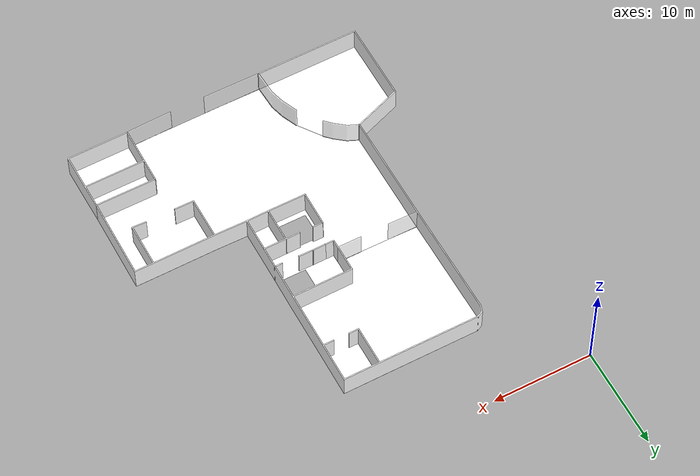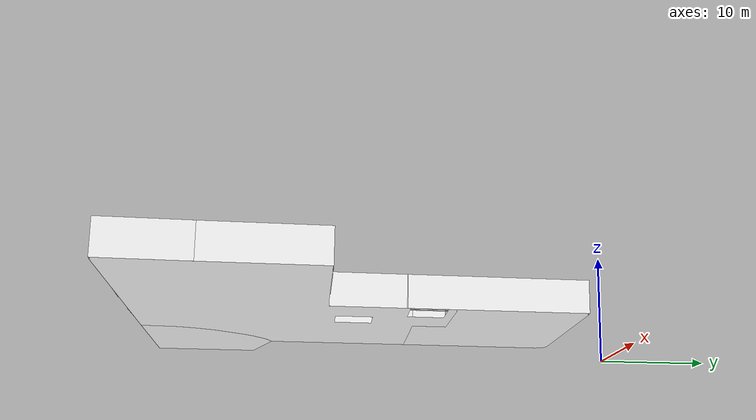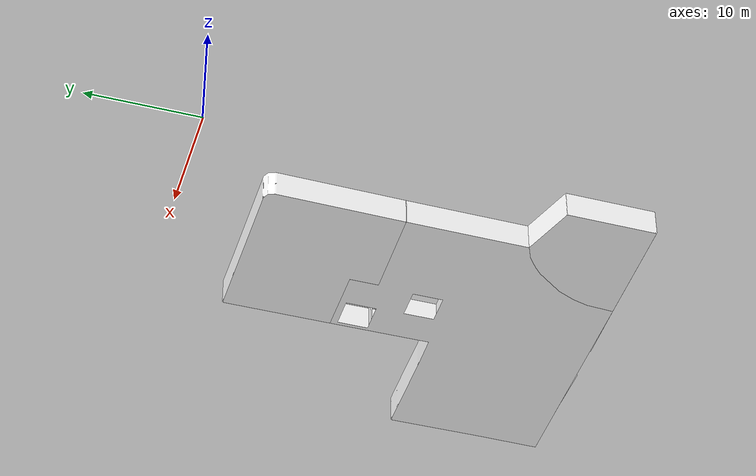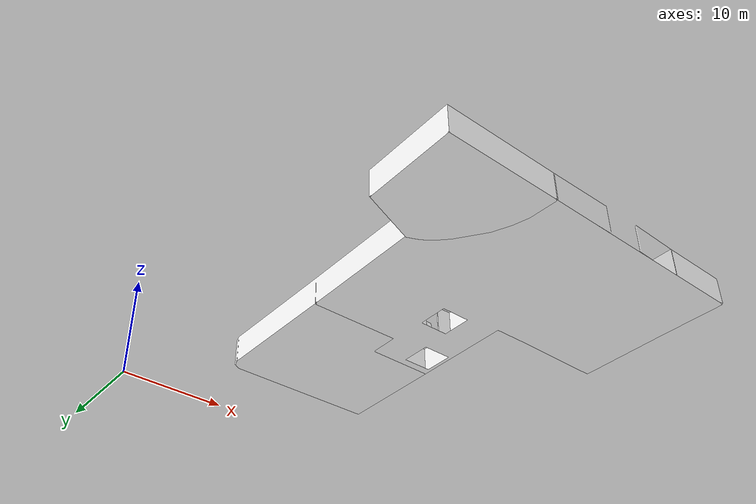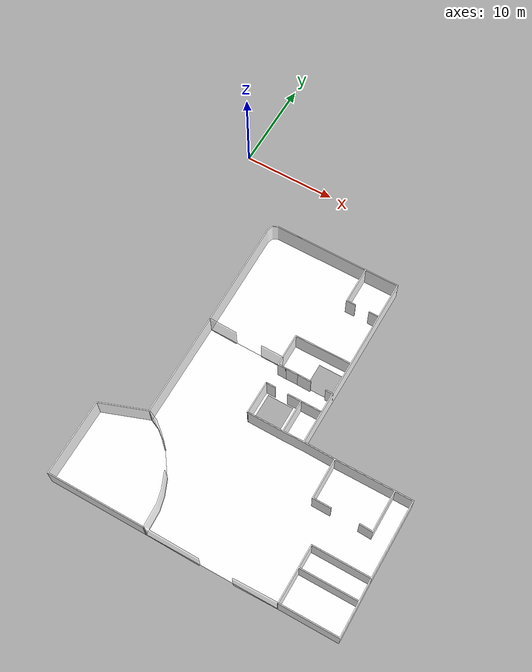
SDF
<?xml version='1.0' encoding='utf-8'?>
<sdf version="1.7">
  <model name="hotel_L1_before">
    <static>true</static>
    <link name="floor_1">
      <visual name="visual">
        <geometry>
          <mesh>
            <uri>model://hotel_L1_before/meshes/floor_1.obj</uri>
          </mesh>
        </geometry>
        <material>
          <diffuse>1.0 1.0 1.0</diffuse>
          <specular>0.1 0.1 0.1</specular>
          <pbr>
            <metal>
              <metalness>0.0</metalness>
              <albedo_map>model://hotel_L1_before/meshes/concrete2.png</albedo_map>
            </metal>
          </pbr>
          <script>
            <uri>model://hotel_L1_before/meshes/</uri>
            <name>floor_1_Diffuse</name>
          </script>
        </material>
      </visual>
      <collision name="collision">
        <geometry>
          <mesh>
            <uri>model://hotel_L1_before/meshes/floor_1.obj</uri>
          </mesh>
        </geometry>
        <surface>
          <contact>
            <collide_bitmask>0x01</collide_bitmask>
          </contact>
        </surface>
      </collision>
    </link>
    <link name="floor_2">
      <visual name="visual">
        <geometry>
          <mesh>
            <uri>model://hotel_L1_before/meshes/floor_2.obj</uri>
          </mesh>
        </geometry>
        <material>
          <diffuse>1.0 1.0 1.0</diffuse>
          <specular>0.1 0.1 0.1</specular>
          <pbr>
            <metal>
              <metalness>0.0</metalness>
              <albedo_map>model://hotel_L1_before/meshes/red_tiles.png</albedo_map>
            </metal>
          </pbr>
          <script>
            <uri>model://hotel_L1_before/meshes/</uri>
            <name>floor_2_Diffuse</name>
          </script>
        </material>
      </visual>
      <collision name="collision">
        <geometry>
          <mesh>
            <uri>model://hotel_L1_before/meshes/floor_2.obj</uri>
          </mesh>
        </geometry>
        <surface>
          <contact>
            <collide_bitmask>0x01</collide_bitmask>
          </contact>
        </surface>
      </collision>
    </link>
    <link name="floor_3">
      <visual name="visual">
        <geometry>
          <mesh>
            <uri>model://hotel_L1_before/meshes/floor_3.obj</uri>
          </mesh>
        </geometry>
        <material>
          <diffuse>1.0 1.0 1.0</diffuse>
          <specular>0.1 0.1 0.1</specular>
          <pbr>
            <metal>
              <metalness>0.0</metalness>
              <albedo_map>model://hotel_L1_before/meshes/white_beige_tiles.png</albedo_map>
            </metal>
          </pbr>
          <script>
            <uri>model://hotel_L1_before/meshes/</uri>
            <name>floor_3_Diffuse</name>
          </script>
        </material>
      </visual>
      <collision name="collision">
        <geometry>
          <mesh>
            <uri>model://hotel_L1_before/meshes/floor_3.obj</uri>
          </mesh>
        </geometry>
        <surface>
          <contact>
            <collide_bitmask>0x01</collide_bitmask>
          </contact>
        </surface>
      </collision>
    </link>
    <link name="wall_1">
      <visual name="wall_1">
        <geometry>
          <mesh>
            <uri>model://hotel_L1_before/meshes/wall_1.obj</uri>
          </mesh>
        </geometry>
        <transparency>0.0</transparency>
        <material>
          <diffuse>1.0 1.0 1.0</diffuse>
          <specular>0.1 0.1 0.1</specular>
          <pbr>
            <metal>
              <metalness>0.0</metalness>
              <albedo_map>model://hotel_L1_before/meshes/white_brick.png</albedo_map>
            </metal>
          </pbr>
          <script>
            <uri>model://hotel_L1_before/meshes/</uri>
            <name>wall_1_Diffuse</name>
          </script>
        </material>
      </visual>
      <collision name="collision">
        <geometry>
          <mesh>
            <uri>model://hotel_L1_before/meshes/wall_1.obj</uri>
          </mesh>
        </geometry>
        <surface>
          <contact>
            <collide_bitmask>0x01</collide_bitmask>
          </contact>
        </surface>
      </collision>
      <pose>2.2522282575069843 -40.52464950099821 0 0 0 0</pose>
    </link>
    <link name="wall_2">
      <visual name="wall_2">
        <geometry>
          <mesh>
            <uri>model://hotel_L1_before/meshes/wall_2.obj</uri>
          </mesh>
        </geometry>
        <transparency>0.4</transparency>
        <material>
          <diffuse>1.0 1.0 1.0</diffuse>
          <specular>0.1 0.1 0.1</specular>
          <pbr>
            <metal>
              <metalness>0.0</metalness>
              <albedo_map>model://hotel_L1_before/meshes/white_brick.png</albedo_map>
            </metal>
          </pbr>
          <script>
            <uri>model://hotel_L1_before/meshes/</uri>
            <name>wall_2_Diffuse</name>
          </script>
        </material>
      </visual>
      <collision name="collision">
        <geometry>
          <mesh>
            <uri>model://hotel_L1_before/meshes/wall_2.obj</uri>
          </mesh>
        </geometry>
        <surface>
          <contact>
            <collide_bitmask>0x01</collide_bitmask>
          </contact>
        </surface>
      </collision>
      <pose>7.025808698579259 -19.658756477546383 0 0 0 0</pose>
    </link>
    <link name="wall_3">
      <visual name="wall_3">
        <geometry>
          <mesh>
            <uri>model://hotel_L1_before/meshes/wall_3.obj</uri>
          </mesh>
        </geometry>
        <transparency>0.0</transparency>
        <material>
          <diffuse>1.0 1.0 1.0</diffuse>
          <specular>0.1 0.1 0.1</specular>
          <pbr>
            <metal>
              <metalness>0.0</metalness>
              <albedo_map>model://hotel_L1_before/meshes/white_beige_tiles.png</albedo_map>
            </metal>
          </pbr>
          <script>
            <uri>model://hotel_L1_before/meshes/</uri>
            <name>wall_3_Diffuse</name>
          </script>
        </material>
      </visual>
      <collision name="collision">
        <geometry>
          <mesh>
            <uri>model://hotel_L1_before/meshes/wall_3.obj</uri>
          </mesh>
        </geometry>
        <surface>
          <contact>
            <collide_bitmask>0x01</collide_bitmask>
          </contact>
        </surface>
      </collision>
      <pose>15.230619618099192 -26.215655451325162 0 0 0 0</pose>
    </link>
    <link name="wall_4">
      <visual name="wall_4">
        <geometry>
          <mesh>
            <uri>model://hotel_L1_before/meshes/wall_4.obj</uri>
          </mesh>
        </geometry>
        <transparency>0.0</transparency>
        <material>
          <diffuse>1.0 1.0 1.0</diffuse>
          <specular>0.1 0.1 0.1</specular>
          <pbr>
            <metal>
              <metalness>0.0</metalness>
              <albedo_map>model://hotel_L1_before/meshes/blue_linoleum.png</albedo_map>
            </metal>
          </pbr>
          <script>
            <uri>model://hotel_L1_before/meshes/</uri>
            <name>wall_4_Diffuse</name>
          </script>
        </material>
      </visual>
      <collision name="collision">
        <geometry>
          <mesh>
            <uri>model://hotel_L1_before/meshes/wall_4.obj</uri>
          </mesh>
        </geometry>
        <surface>
          <contact>
            <collide_bitmask>0x01</collide_bitmask>
          </contact>
        </surface>
      </collision>
      <pose>26.6446040486479 -40.311773898212664 0 0 0 0</pose>
    </link>
    <link name="wall_5">
      <visual name="wall_5">
        <geometry>
          <mesh>
            <uri>model://hotel_L1_before/meshes/wall_5.obj</uri>
          </mesh>
        </geometry>
        <transparency>0.4</transparency>
        <material>
          <diffuse>1.0 1.0 1.0</diffuse>
          <specular>0.1 0.1 0.1</specular>
          <pbr>
            <metal>
              <metalness>0.0</metalness>
              <albedo_map>model://hotel_L1_before/meshes/blue_linoleum.png</albedo_map>
            </metal>
          </pbr>
          <script>
            <uri>model://hotel_L1_before/meshes/</uri>
            <name>wall_5_Diffuse</name>
          </script>
        </material>
      </visual>
      <collision name="collision">
        <geometry>
          <mesh>
            <uri>model://hotel_L1_before/meshes/wall_5.obj</uri>
          </mesh>
        </geometry>
        <surface>
          <contact>
            <collide_bitmask>0x01</collide_bitmask>
          </contact>
        </surface>
      </collision>
      <pose>7.053491876501942 -40.46493434083732 0 0 0 0</pose>
    </link>
    <link name="wall_6">
      <visual name="wall_6">
        <geometry>
          <mesh>
            <uri>model://hotel_L1_before/meshes/wall_6.obj</uri>
          </mesh>
        </geometry>
        <transparency>0.0</transparency>
        <material>
          <diffuse>1.0 1.0 1.0</diffuse>
          <specular>0.1 0.1 0.1</specular>
          <pbr>
            <metal>
              <metalness>0.0</metalness>
              <albedo_map>model://hotel_L1_before/meshes/black_concrete.png</albedo_map>
            </metal>
          </pbr>
          <script>
            <uri>model://hotel_L1_before/meshes/</uri>
            <name>wall_6_Diffuse</name>
          </script>
        </material>
      </visual>
      <collision name="collision">
        <geometry>
          <mesh>
            <uri>model://hotel_L1_before/meshes/wall_6.obj</uri>
          </mesh>
        </geometry>
        <surface>
          <contact>
            <collide_bitmask>0x01</collide_bitmask>
          </contact>
        </surface>
      </collision>
      <pose>16.13498958341294 -20.504136073535577 0 0 0 0</pose>
    </link>
  </model>
</sdf>
